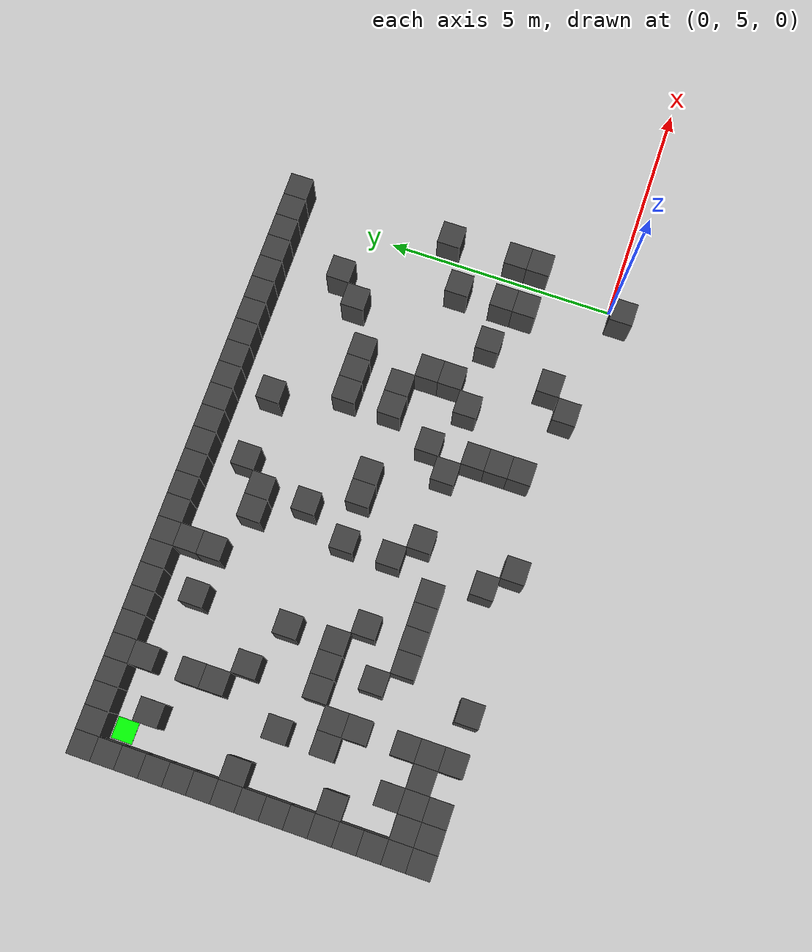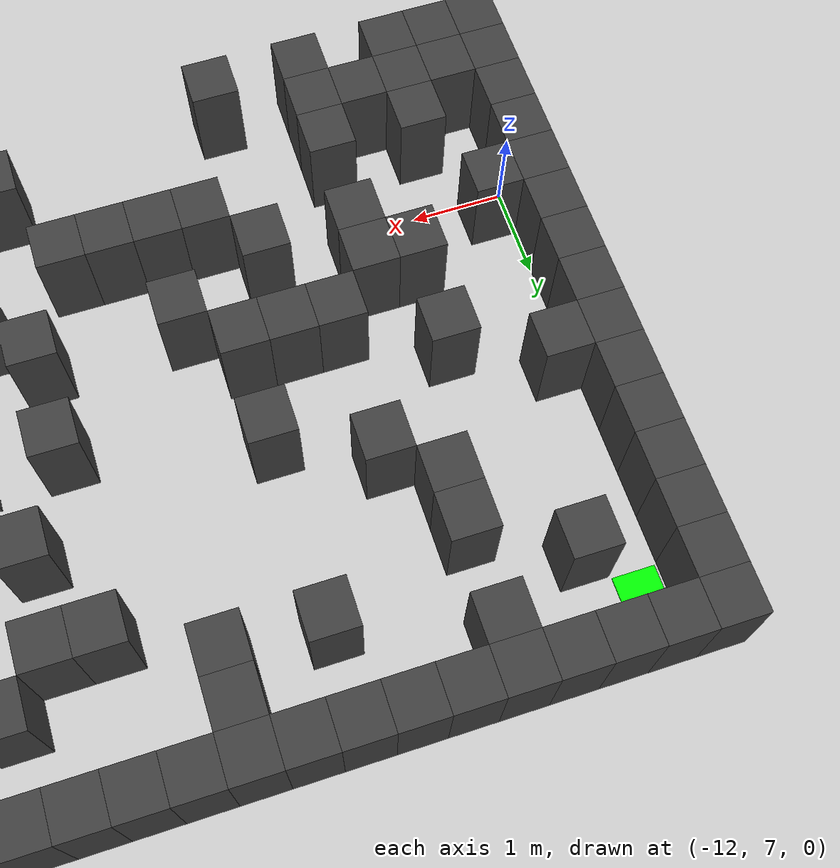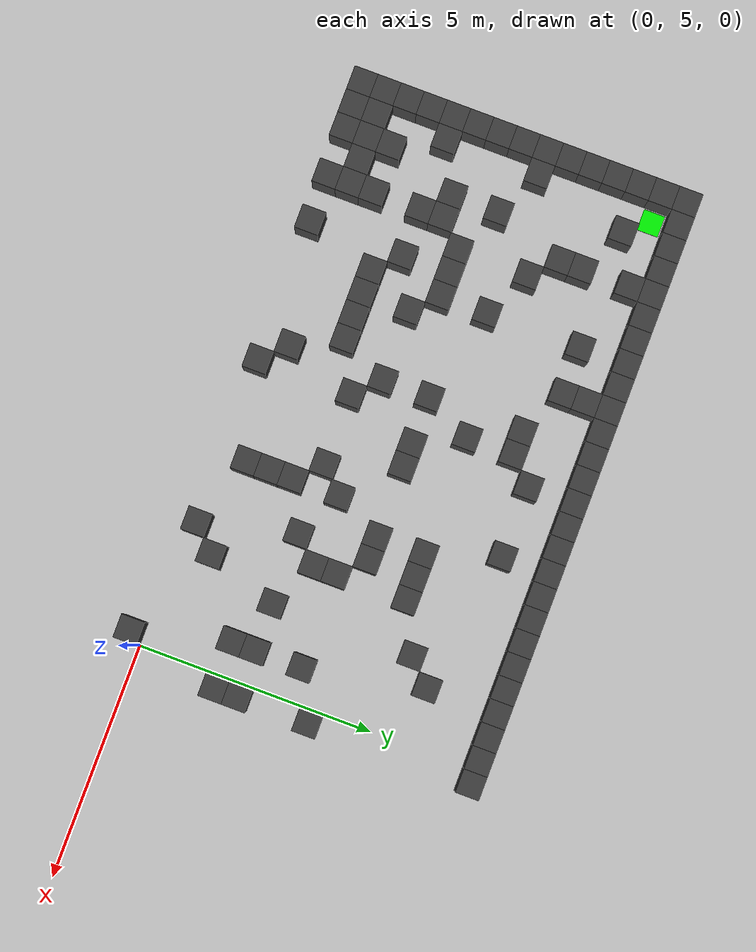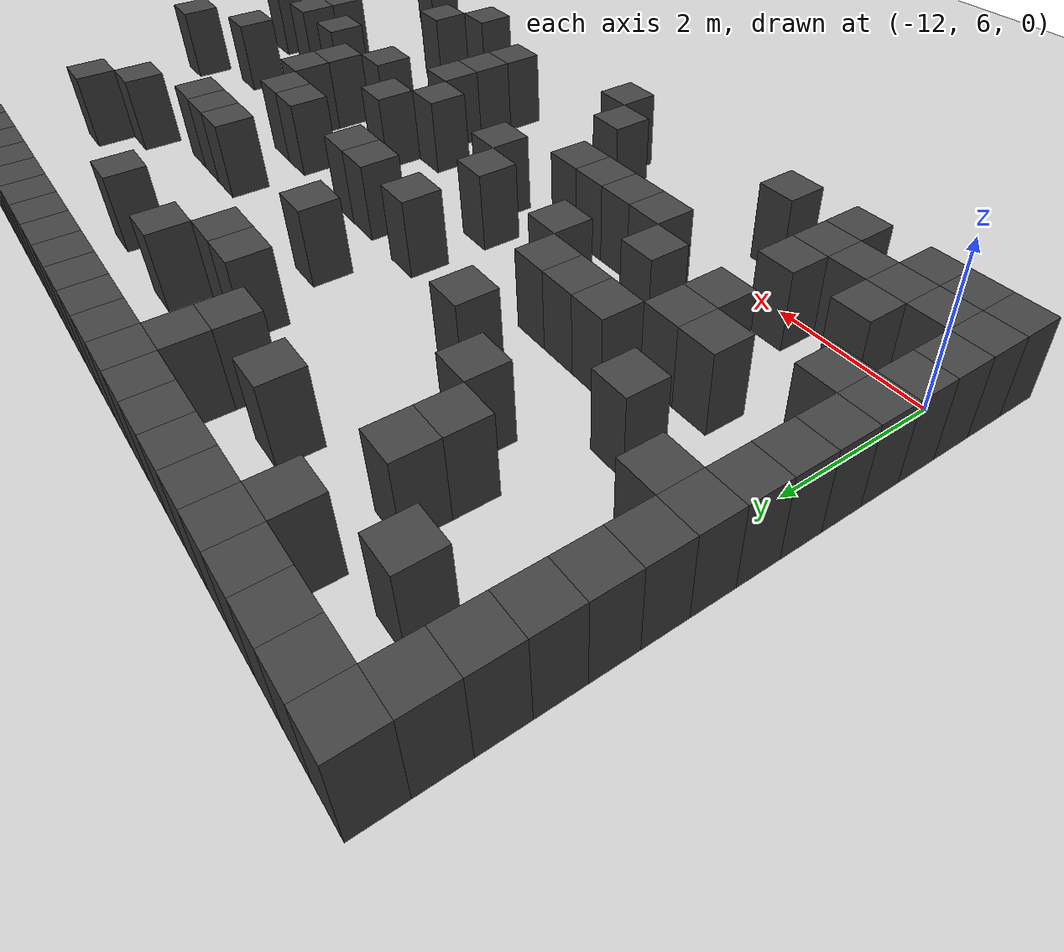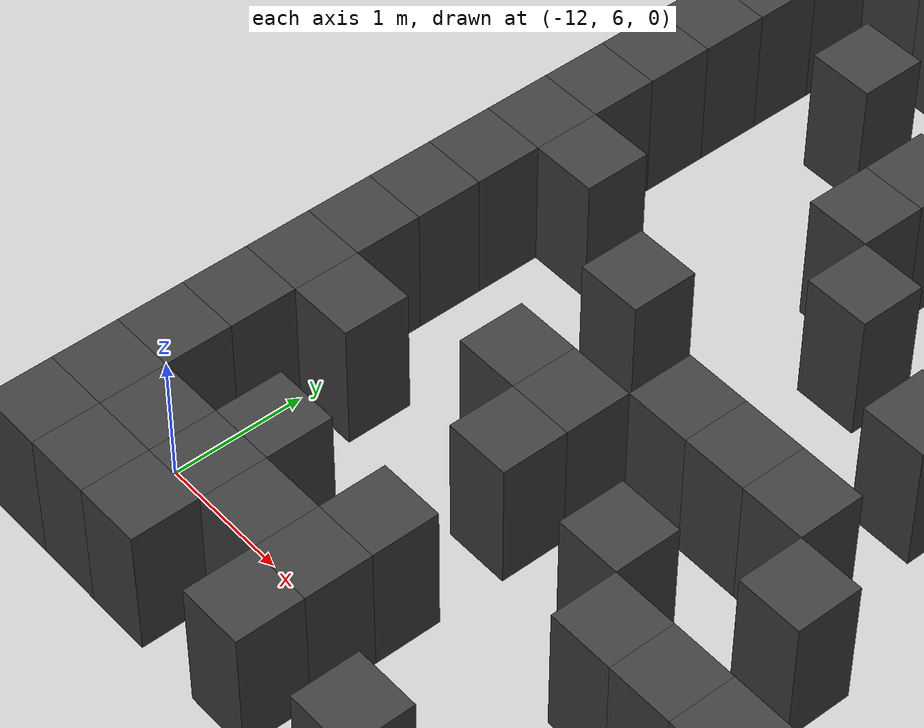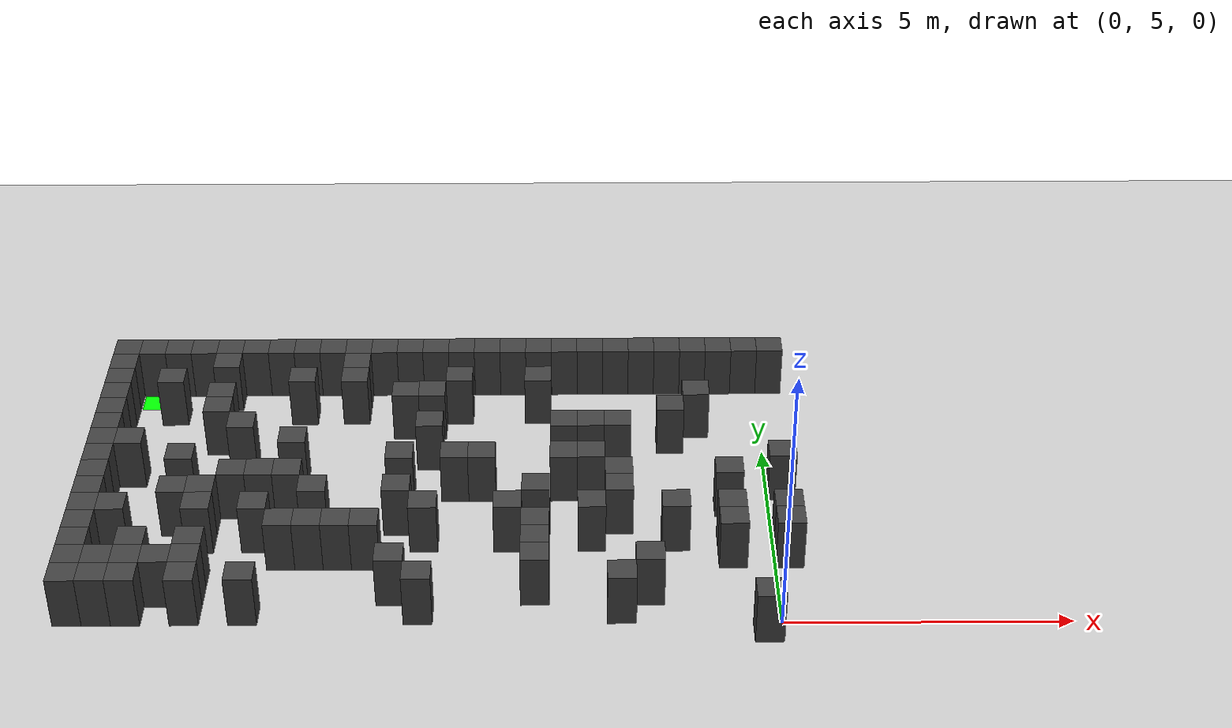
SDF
<sdf version="1.7">
 <world name="map_4226">
  <model name="ground_plane">
   <static>true</static>
   <link name="link">
    <collision name="collision">
     <geometry><plane><normal>0 0 1</normal><size>200 200</size></plane></geometry>
    </collision>
    <visual name="visual">
     <geometry><plane><normal>0 0 1</normal><size>200 200</size></plane></geometry>
     <material><ambient>0.8 0.8 0.8 1</ambient><diffuse>0.8 0.8 0.8 1</diffuse></material>
    </visual>
   </link>
  </model>
  <model name="maze_environment">
   <static>true</static>
   <link name="wall_0">
    <pose>-12.250 12.250 0.500 0 0 0</pose>
    <collision name="col"><geometry><box><size>0.5 0.5 1.0</size></box></geometry></collision>
    <visual name="vis">
     <geometry><box><size>0.5 0.5 1.0</size></box></geometry>
     <material><ambient>0.15 0.15 0.15 1</ambient><diffuse>0.25 0.25 0.25 1</diffuse></material>
    </visual>
   </link>
   <link name="wall_1">
    <pose>-11.750 12.250 0.500 0 0 0</pose>
    <collision name="col"><geometry><box><size>0.5 0.5 1.0</size></box></geometry></collision>
    <visual name="vis">
     <geometry><box><size>0.5 0.5 1.0</size></box></geometry>
     <material><ambient>0.15 0.15 0.15 1</ambient><diffuse>0.25 0.25 0.25 1</diffuse></material>
    </visual>
   </link>
   <link name="wall_2">
    <pose>-11.250 12.250 0.500 0 0 0</pose>
    <collision name="col"><geometry><box><size>0.5 0.5 1.0</size></box></geometry></collision>
    <visual name="vis">
     <geometry><box><size>0.5 0.5 1.0</size></box></geometry>
     <material><ambient>0.15 0.15 0.15 1</ambient><diffuse>0.25 0.25 0.25 1</diffuse></material>
    </visual>
   </link>
   <link name="wall_3">
    <pose>-10.750 12.250 0.500 0 0 0</pose>
    <collision name="col"><geometry><box><size>0.5 0.5 1.0</size></box></geometry></collision>
    <visual name="vis">
     <geometry><box><size>0.5 0.5 1.0</size></box></geometry>
     <material><ambient>0.15 0.15 0.15 1</ambient><diffuse>0.25 0.25 0.25 1</diffuse></material>
    </visual>
   </link>
   <link name="wall_4">
    <pose>-10.250 12.250 0.500 0 0 0</pose>
    <collision name="col"><geometry><box><size>0.5 0.5 1.0</size></box></geometry></collision>
    <visual name="vis">
     <geometry><box><size>0.5 0.5 1.0</size></box></geometry>
     <material><ambient>0.15 0.15 0.15 1</ambient><diffuse>0.25 0.25 0.25 1</diffuse></material>
    </visual>
   </link>
   <link name="wall_5">
    <pose>-9.750 12.250 0.500 0 0 0</pose>
    <collision name="col"><geometry><box><size>0.5 0.5 1.0</size></box></geometry></collision>
    <visual name="vis">
     <geometry><box><size>0.5 0.5 1.0</size></box></geometry>
     <material><ambient>0.15 0.15 0.15 1</ambient><diffuse>0.25 0.25 0.25 1</diffuse></material>
    </visual>
   </link>
   <link name="wall_6">
    <pose>-9.250 12.250 0.500 0 0 0</pose>
    <collision name="col"><geometry><box><size>0.5 0.5 1.0</size></box></geometry></collision>
    <visual name="vis">
     <geometry><box><size>0.5 0.5 1.0</size></box></geometry>
     <material><ambient>0.15 0.15 0.15 1</ambient><diffuse>0.25 0.25 0.25 1</diffuse></material>
    </visual>
   </link>
   <link name="wall_7">
    <pose>-8.750 12.250 0.500 0 0 0</pose>
    <collision name="col"><geometry><box><size>0.5 0.5 1.0</size></box></geometry></collision>
    <visual name="vis">
     <geometry><box><size>0.5 0.5 1.0</size></box></geometry>
     <material><ambient>0.15 0.15 0.15 1</ambient><diffuse>0.25 0.25 0.25 1</diffuse></material>
    </visual>
   </link>
   <link name="wall_8">
    <pose>-8.250 12.250 0.500 0 0 0</pose>
    <collision name="col"><geometry><box><size>0.5 0.5 1.0</size></box></geometry></collision>
    <visual name="vis">
     <geometry><box><size>0.5 0.5 1.0</size></box></geometry>
     <material><ambient>0.15 0.15 0.15 1</ambient><diffuse>0.25 0.25 0.25 1</diffuse></material>
    </visual>
   </link>
   <link name="wall_9">
    <pose>-7.750 12.250 0.500 0 0 0</pose>
    <collision name="col"><geometry><box><size>0.5 0.5 1.0</size></box></geometry></collision>
    <visual name="vis">
     <geometry><box><size>0.5 0.5 1.0</size></box></geometry>
     <material><ambient>0.15 0.15 0.15 1</ambient><diffuse>0.25 0.25 0.25 1</diffuse></material>
    </visual>
   </link>
   <link name="wall_10">
    <pose>-7.250 12.250 0.500 0 0 0</pose>
    <collision name="col"><geometry><box><size>0.5 0.5 1.0</size></box></geometry></collision>
    <visual name="vis">
     <geometry><box><size>0.5 0.5 1.0</size></box></geometry>
     <material><ambient>0.15 0.15 0.15 1</ambient><diffuse>0.25 0.25 0.25 1</diffuse></material>
    </visual>
   </link>
   <link name="wall_11">
    <pose>-6.750 12.250 0.500 0 0 0</pose>
    <collision name="col"><geometry><box><size>0.5 0.5 1.0</size></box></geometry></collision>
    <visual name="vis">
     <geometry><box><size>0.5 0.5 1.0</size></box></geometry>
     <material><ambient>0.15 0.15 0.15 1</ambient><diffuse>0.25 0.25 0.25 1</diffuse></material>
    </visual>
   </link>
   <link name="wall_12">
    <pose>-6.250 12.250 0.500 0 0 0</pose>
    <collision name="col"><geometry><box><size>0.5 0.5 1.0</size></box></geometry></collision>
    <visual name="vis">
     <geometry><box><size>0.5 0.5 1.0</size></box></geometry>
     <material><ambient>0.15 0.15 0.15 1</ambient><diffuse>0.25 0.25 0.25 1</diffuse></material>
    </visual>
   </link>
   <link name="wall_13">
    <pose>-5.750 12.250 0.500 0 0 0</pose>
    <collision name="col"><geometry><box><size>0.5 0.5 1.0</size></box></geometry></collision>
    <visual name="vis">
     <geometry><box><size>0.5 0.5 1.0</size></box></geometry>
     <material><ambient>0.15 0.15 0.15 1</ambient><diffuse>0.25 0.25 0.25 1</diffuse></material>
    </visual>
   </link>
   <link name="wall_14">
    <pose>-5.250 12.250 0.500 0 0 0</pose>
    <collision name="col"><geometry><box><size>0.5 0.5 1.0</size></box></geometry></collision>
    <visual name="vis">
     <geometry><box><size>0.5 0.5 1.0</size></box></geometry>
     <material><ambient>0.15 0.15 0.15 1</ambient><diffuse>0.25 0.25 0.25 1</diffuse></material>
    </visual>
   </link>
   <link name="wall_15">
    <pose>-4.750 12.250 0.500 0 0 0</pose>
    <collision name="col"><geometry><box><size>0.5 0.5 1.0</size></box></geometry></collision>
    <visual name="vis">
     <geometry><box><size>0.5 0.5 1.0</size></box></geometry>
     <material><ambient>0.15 0.15 0.15 1</ambient><diffuse>0.25 0.25 0.25 1</diffuse></material>
    </visual>
   </link>
   <link name="wall_16">
    <pose>-4.250 12.250 0.500 0 0 0</pose>
    <collision name="col"><geometry><box><size>0.5 0.5 1.0</size></box></geometry></collision>
    <visual name="vis">
     <geometry><box><size>0.5 0.5 1.0</size></box></geometry>
     <material><ambient>0.15 0.15 0.15 1</ambient><diffuse>0.25 0.25 0.25 1</diffuse></material>
    </visual>
   </link>
   <link name="wall_17">
    <pose>-3.750 12.250 0.500 0 0 0</pose>
    <collision name="col"><geometry><box><size>0.5 0.5 1.0</size></box></geometry></collision>
    <visual name="vis">
     <geometry><box><size>0.5 0.5 1.0</size></box></geometry>
     <material><ambient>0.15 0.15 0.15 1</ambient><diffuse>0.25 0.25 0.25 1</diffuse></material>
    </visual>
   </link>
   <link name="wall_18">
    <pose>-3.250 12.250 0.500 0 0 0</pose>
    <collision name="col"><geometry><box><size>0.5 0.5 1.0</size></box></geometry></collision>
    <visual name="vis">
     <geometry><box><size>0.5 0.5 1.0</size></box></geometry>
     <material><ambient>0.15 0.15 0.15 1</ambient><diffuse>0.25 0.25 0.25 1</diffuse></material>
    </visual>
   </link>
   <link name="wall_19">
    <pose>-2.750 12.250 0.500 0 0 0</pose>
    <collision name="col"><geometry><box><size>0.5 0.5 1.0</size></box></geometry></collision>
    <visual name="vis">
     <geometry><box><size>0.5 0.5 1.0</size></box></geometry>
     <material><ambient>0.15 0.15 0.15 1</ambient><diffuse>0.25 0.25 0.25 1</diffuse></material>
    </visual>
   </link>
   <link name="wall_20">
    <pose>-2.250 12.250 0.500 0 0 0</pose>
    <collision name="col"><geometry><box><size>0.5 0.5 1.0</size></box></geometry></collision>
    <visual name="vis">
     <geometry><box><size>0.5 0.5 1.0</size></box></geometry>
     <material><ambient>0.15 0.15 0.15 1</ambient><diffuse>0.25 0.25 0.25 1</diffuse></material>
    </visual>
   </link>
   <link name="wall_21">
    <pose>-1.750 12.250 0.500 0 0 0</pose>
    <collision name="col"><geometry><box><size>0.5 0.5 1.0</size></box></geometry></collision>
    <visual name="vis">
     <geometry><box><size>0.5 0.5 1.0</size></box></geometry>
     <material><ambient>0.15 0.15 0.15 1</ambient><diffuse>0.25 0.25 0.25 1</diffuse></material>
    </visual>
   </link>
   <link name="wall_22">
    <pose>-1.250 12.250 0.500 0 0 0</pose>
    <collision name="col"><geometry><box><size>0.5 0.5 1.0</size></box></geometry></collision>
    <visual name="vis">
     <geometry><box><size>0.5 0.5 1.0</size></box></geometry>
     <material><ambient>0.15 0.15 0.15 1</ambient><diffuse>0.25 0.25 0.25 1</diffuse></material>
    </visual>
   </link>
   <link name="wall_23">
    <pose>-0.750 12.250 0.500 0 0 0</pose>
    <collision name="col"><geometry><box><size>0.5 0.5 1.0</size></box></geometry></collision>
    <visual name="vis">
     <geometry><box><size>0.5 0.5 1.0</size></box></geometry>
     <material><ambient>0.15 0.15 0.15 1</ambient><diffuse>0.25 0.25 0.25 1</diffuse></material>
    </visual>
   </link>
   <link name="wall_24">
    <pose>-0.250 12.250 0.500 0 0 0</pose>
    <collision name="col"><geometry><box><size>0.5 0.5 1.0</size></box></geometry></collision>
    <visual name="vis">
     <geometry><box><size>0.5 0.5 1.0</size></box></geometry>
     <material><ambient>0.15 0.15 0.15 1</ambient><diffuse>0.25 0.25 0.25 1</diffuse></material>
    </visual>
   </link>
   <link name="wall_25">
    <pose>0.250 12.250 0.500 0 0 0</pose>
    <collision name="col"><geometry><box><size>0.5 0.5 1.0</size></box></geometry></collision>
    <visual name="vis">
     <geometry><box><size>0.5 0.5 1.0</size></box></geometry>
     <material><ambient>0.15 0.15 0.15 1</ambient><diffuse>0.25 0.25 0.25 1</diffuse></material>
    </visual>
   </link>
   <link name="wall_50">
    <pose>-12.250 11.750 0.500 0 0 0</pose>
    <collision name="col"><geometry><box><size>0.5 0.5 1.0</size></box></geometry></collision>
    <visual name="vis">
     <geometry><box><size>0.5 0.5 1.0</size></box></geometry>
     <material><ambient>0.15 0.15 0.15 1</ambient><diffuse>0.25 0.25 0.25 1</diffuse></material>
    </visual>
   </link>
   <link name="wall_51">
    <pose>-10.250 11.750 0.500 0 0 0</pose>
    <collision name="col"><geometry><box><size>0.5 0.5 1.0</size></box></geometry></collision>
    <visual name="vis">
     <geometry><box><size>0.5 0.5 1.0</size></box></geometry>
     <material><ambient>0.15 0.15 0.15 1</ambient><diffuse>0.25 0.25 0.25 1</diffuse></material>
    </visual>
   </link>
   <link name="wall_52">
    <pose>-7.750 11.750 0.500 0 0 0</pose>
    <collision name="col"><geometry><box><size>0.5 0.5 1.0</size></box></geometry></collision>
    <visual name="vis">
     <geometry><box><size>0.5 0.5 1.0</size></box></geometry>
     <material><ambient>0.15 0.15 0.15 1</ambient><diffuse>0.25 0.25 0.25 1</diffuse></material>
    </visual>
   </link>
   <link name="wall_58">
    <pose>-12.250 11.250 0.500 0 0 0</pose>
    <collision name="col"><geometry><box><size>0.5 0.5 1.0</size></box></geometry></collision>
    <visual name="vis">
     <geometry><box><size>0.5 0.5 1.0</size></box></geometry>
     <material><ambient>0.15 0.15 0.15 1</ambient><diffuse>0.25 0.25 0.25 1</diffuse></material>
    </visual>
   </link>
   <link name="wall_59">
    <pose>-11.250 11.250 0.500 0 0 0</pose>
    <collision name="col"><geometry><box><size>0.5 0.5 1.0</size></box></geometry></collision>
    <visual name="vis">
     <geometry><box><size>0.5 0.5 1.0</size></box></geometry>
     <material><ambient>0.15 0.15 0.15 1</ambient><diffuse>0.25 0.25 0.25 1</diffuse></material>
    </visual>
   </link>
   <link name="wall_60">
    <pose>-8.750 11.250 0.500 0 0 0</pose>
    <collision name="col"><geometry><box><size>0.5 0.5 1.0</size></box></geometry></collision>
    <visual name="vis">
     <geometry><box><size>0.5 0.5 1.0</size></box></geometry>
     <material><ambient>0.15 0.15 0.15 1</ambient><diffuse>0.25 0.25 0.25 1</diffuse></material>
    </visual>
   </link>
   <link name="wall_61">
    <pose>-7.750 11.250 0.500 0 0 0</pose>
    <collision name="col"><geometry><box><size>0.5 0.5 1.0</size></box></geometry></collision>
    <visual name="vis">
     <geometry><box><size>0.5 0.5 1.0</size></box></geometry>
     <material><ambient>0.15 0.15 0.15 1</ambient><diffuse>0.25 0.25 0.25 1</diffuse></material>
    </visual>
   </link>
   <link name="wall_62">
    <pose>-5.750 11.250 0.500 0 0 0</pose>
    <collision name="col"><geometry><box><size>0.5 0.5 1.0</size></box></geometry></collision>
    <visual name="vis">
     <geometry><box><size>0.5 0.5 1.0</size></box></geometry>
     <material><ambient>0.15 0.15 0.15 1</ambient><diffuse>0.25 0.25 0.25 1</diffuse></material>
    </visual>
   </link>
   <link name="wall_63">
    <pose>-4.250 11.250 0.500 0 0 0</pose>
    <collision name="col"><geometry><box><size>0.5 0.5 1.0</size></box></geometry></collision>
    <visual name="vis">
     <geometry><box><size>0.5 0.5 1.0</size></box></geometry>
     <material><ambient>0.15 0.15 0.15 1</ambient><diffuse>0.25 0.25 0.25 1</diffuse></material>
    </visual>
   </link>
   <link name="wall_73">
    <pose>-12.250 10.750 0.500 0 0 0</pose>
    <collision name="col"><geometry><box><size>0.5 0.5 1.0</size></box></geometry></collision>
    <visual name="vis">
     <geometry><box><size>0.5 0.5 1.0</size></box></geometry>
     <material><ambient>0.15 0.15 0.15 1</ambient><diffuse>0.25 0.25 0.25 1</diffuse></material>
    </visual>
   </link>
   <link name="wall_74">
    <pose>-10.250 10.750 0.500 0 0 0</pose>
    <collision name="col"><geometry><box><size>0.5 0.5 1.0</size></box></geometry></collision>
    <visual name="vis">
     <geometry><box><size>0.5 0.5 1.0</size></box></geometry>
     <material><ambient>0.15 0.15 0.15 1</ambient><diffuse>0.25 0.25 0.25 1</diffuse></material>
    </visual>
   </link>
   <link name="wall_75">
    <pose>-6.750 10.750 0.500 0 0 0</pose>
    <collision name="col"><geometry><box><size>0.5 0.5 1.0</size></box></geometry></collision>
    <visual name="vis">
     <geometry><box><size>0.5 0.5 1.0</size></box></geometry>
     <material><ambient>0.15 0.15 0.15 1</ambient><diffuse>0.25 0.25 0.25 1</diffuse></material>
    </visual>
   </link>
   <link name="wall_76">
    <pose>-6.250 10.750 0.500 0 0 0</pose>
    <collision name="col"><geometry><box><size>0.5 0.5 1.0</size></box></geometry></collision>
    <visual name="vis">
     <geometry><box><size>0.5 0.5 1.0</size></box></geometry>
     <material><ambient>0.15 0.15 0.15 1</ambient><diffuse>0.25 0.25 0.25 1</diffuse></material>
    </visual>
   </link>
   <link name="wall_77">
    <pose>-1.250 10.750 0.500 0 0 0</pose>
    <collision name="col"><geometry><box><size>0.5 0.5 1.0</size></box></geometry></collision>
    <visual name="vis">
     <geometry><box><size>0.5 0.5 1.0</size></box></geometry>
     <material><ambient>0.15 0.15 0.15 1</ambient><diffuse>0.25 0.25 0.25 1</diffuse></material>
    </visual>
   </link>
   <link name="wall_84">
    <pose>-12.250 10.250 0.500 0 0 0</pose>
    <collision name="col"><geometry><box><size>0.5 0.5 1.0</size></box></geometry></collision>
    <visual name="vis">
     <geometry><box><size>0.5 0.5 1.0</size></box></geometry>
     <material><ambient>0.15 0.15 0.15 1</ambient><diffuse>0.25 0.25 0.25 1</diffuse></material>
    </visual>
   </link>
   <link name="wall_85">
    <pose>-10.250 10.250 0.500 0 0 0</pose>
    <collision name="col"><geometry><box><size>0.5 0.5 1.0</size></box></geometry></collision>
    <visual name="vis">
     <geometry><box><size>0.5 0.5 1.0</size></box></geometry>
     <material><ambient>0.15 0.15 0.15 1</ambient><diffuse>0.25 0.25 0.25 1</diffuse></material>
    </visual>
   </link>
   <link name="wall_86">
    <pose>-1.750 10.250 0.500 0 0 0</pose>
    <collision name="col"><geometry><box><size>0.5 0.5 1.0</size></box></geometry></collision>
    <visual name="vis">
     <geometry><box><size>0.5 0.5 1.0</size></box></geometry>
     <material><ambient>0.15 0.15 0.15 1</ambient><diffuse>0.25 0.25 0.25 1</diffuse></material>
    </visual>
   </link>
   <link name="wall_93">
    <pose>-12.250 9.750 0.500 0 0 0</pose>
    <collision name="col"><geometry><box><size>0.5 0.5 1.0</size></box></geometry></collision>
    <visual name="vis">
     <geometry><box><size>0.5 0.5 1.0</size></box></geometry>
     <material><ambient>0.15 0.15 0.15 1</ambient><diffuse>0.25 0.25 0.25 1</diffuse></material>
    </visual>
   </link>
   <link name="wall_94">
    <pose>-9.750 9.750 0.500 0 0 0</pose>
    <collision name="col"><geometry><box><size>0.5 0.5 1.0</size></box></geometry></collision>
    <visual name="vis">
     <geometry><box><size>0.5 0.5 1.0</size></box></geometry>
     <material><ambient>0.15 0.15 0.15 1</ambient><diffuse>0.25 0.25 0.25 1</diffuse></material>
    </visual>
   </link>
   <link name="wall_95">
    <pose>-6.250 9.750 0.500 0 0 0</pose>
    <collision name="col"><geometry><box><size>0.5 0.5 1.0</size></box></geometry></collision>
    <visual name="vis">
     <geometry><box><size>0.5 0.5 1.0</size></box></geometry>
     <material><ambient>0.15 0.15 0.15 1</ambient><diffuse>0.25 0.25 0.25 1</diffuse></material>
    </visual>
   </link>
   <link name="wall_96">
    <pose>-3.750 9.750 0.500 0 0 0</pose>
    <collision name="col"><geometry><box><size>0.5 0.5 1.0</size></box></geometry></collision>
    <visual name="vis">
     <geometry><box><size>0.5 0.5 1.0</size></box></geometry>
     <material><ambient>0.15 0.15 0.15 1</ambient><diffuse>0.25 0.25 0.25 1</diffuse></material>
    </visual>
   </link>
   <link name="wall_97">
    <pose>-3.250 9.750 0.500 0 0 0</pose>
    <collision name="col"><geometry><box><size>0.5 0.5 1.0</size></box></geometry></collision>
    <visual name="vis">
     <geometry><box><size>0.5 0.5 1.0</size></box></geometry>
     <material><ambient>0.15 0.15 0.15 1</ambient><diffuse>0.25 0.25 0.25 1</diffuse></material>
    </visual>
   </link>
   <link name="wall_98">
    <pose>-2.750 9.750 0.500 0 0 0</pose>
    <collision name="col"><geometry><box><size>0.5 0.5 1.0</size></box></geometry></collision>
    <visual name="vis">
     <geometry><box><size>0.5 0.5 1.0</size></box></geometry>
     <material><ambient>0.15 0.15 0.15 1</ambient><diffuse>0.25 0.25 0.25 1</diffuse></material>
    </visual>
   </link>
   <link name="wall_105">
    <pose>-12.250 9.250 0.500 0 0 0</pose>
    <collision name="col"><geometry><box><size>0.5 0.5 1.0</size></box></geometry></collision>
    <visual name="vis">
     <geometry><box><size>0.5 0.5 1.0</size></box></geometry>
     <material><ambient>0.15 0.15 0.15 1</ambient><diffuse>0.25 0.25 0.25 1</diffuse></material>
    </visual>
   </link>
   <link name="wall_106">
    <pose>-11.750 9.250 0.500 0 0 0</pose>
    <collision name="col"><geometry><box><size>0.5 0.5 1.0</size></box></geometry></collision>
    <visual name="vis">
     <geometry><box><size>0.5 0.5 1.0</size></box></geometry>
     <material><ambient>0.15 0.15 0.15 1</ambient><diffuse>0.25 0.25 0.25 1</diffuse></material>
    </visual>
   </link>
   <link name="wall_107">
    <pose>-8.750 9.250 0.500 0 0 0</pose>
    <collision name="col"><geometry><box><size>0.5 0.5 1.0</size></box></geometry></collision>
    <visual name="vis">
     <geometry><box><size>0.5 0.5 1.0</size></box></geometry>
     <material><ambient>0.15 0.15 0.15 1</ambient><diffuse>0.25 0.25 0.25 1</diffuse></material>
    </visual>
   </link>
   <link name="wall_114">
    <pose>-12.250 8.750 0.500 0 0 0</pose>
    <collision name="col"><geometry><box><size>0.5 0.5 1.0</size></box></geometry></collision>
    <visual name="vis">
     <geometry><box><size>0.5 0.5 1.0</size></box></geometry>
     <material><ambient>0.15 0.15 0.15 1</ambient><diffuse>0.25 0.25 0.25 1</diffuse></material>
    </visual>
   </link>
   <link name="wall_115">
    <pose>-10.750 8.750 0.500 0 0 0</pose>
    <collision name="col"><geometry><box><size>0.5 0.5 1.0</size></box></geometry></collision>
    <visual name="vis">
     <geometry><box><size>0.5 0.5 1.0</size></box></geometry>
     <material><ambient>0.15 0.15 0.15 1</ambient><diffuse>0.25 0.25 0.25 1</diffuse></material>
    </visual>
   </link>
   <link name="wall_116">
    <pose>-6.750 8.750 0.500 0 0 0</pose>
    <collision name="col"><geometry><box><size>0.5 0.5 1.0</size></box></geometry></collision>
    <visual name="vis">
     <geometry><box><size>0.5 0.5 1.0</size></box></geometry>
     <material><ambient>0.15 0.15 0.15 1</ambient><diffuse>0.25 0.25 0.25 1</diffuse></material>
    </visual>
   </link>
   <link name="wall_117">
    <pose>-5.750 8.750 0.500 0 0 0</pose>
    <collision name="col"><geometry><box><size>0.5 0.5 1.0</size></box></geometry></collision>
    <visual name="vis">
     <geometry><box><size>0.5 0.5 1.0</size></box></geometry>
     <material><ambient>0.15 0.15 0.15 1</ambient><diffuse>0.25 0.25 0.25 1</diffuse></material>
    </visual>
   </link>
   <link name="wall_118">
    <pose>-5.250 8.750 0.500 0 0 0</pose>
    <collision name="col"><geometry><box><size>0.5 0.5 1.0</size></box></geometry></collision>
    <visual name="vis">
     <geometry><box><size>0.5 0.5 1.0</size></box></geometry>
     <material><ambient>0.15 0.15 0.15 1</ambient><diffuse>0.25 0.25 0.25 1</diffuse></material>
    </visual>
   </link>
   <link name="wall_119">
    <pose>-3.750 8.750 0.500 0 0 0</pose>
    <collision name="col"><geometry><box><size>0.5 0.5 1.0</size></box></geometry></collision>
    <visual name="vis">
     <geometry><box><size>0.5 0.5 1.0</size></box></geometry>
     <material><ambient>0.15 0.15 0.15 1</ambient><diffuse>0.25 0.25 0.25 1</diffuse></material>
    </visual>
   </link>
   <link name="wall_120">
    <pose>-3.250 8.750 0.500 0 0 0</pose>
    <collision name="col"><geometry><box><size>0.5 0.5 1.0</size></box></geometry></collision>
    <visual name="vis">
     <geometry><box><size>0.5 0.5 1.0</size></box></geometry>
     <material><ambient>0.15 0.15 0.15 1</ambient><diffuse>0.25 0.25 0.25 1</diffuse></material>
    </visual>
   </link>
   <link name="wall_121">
    <pose>0.250 8.750 0.500 0 0 0</pose>
    <collision name="col"><geometry><box><size>0.5 0.5 1.0</size></box></geometry></collision>
    <visual name="vis">
     <geometry><box><size>0.5 0.5 1.0</size></box></geometry>
     <material><ambient>0.15 0.15 0.15 1</ambient><diffuse>0.25 0.25 0.25 1</diffuse></material>
    </visual>
   </link>
   <link name="wall_126">
    <pose>-12.250 8.250 0.500 0 0 0</pose>
    <collision name="col"><geometry><box><size>0.5 0.5 1.0</size></box></geometry></collision>
    <visual name="vis">
     <geometry><box><size>0.5 0.5 1.0</size></box></geometry>
     <material><ambient>0.15 0.15 0.15 1</ambient><diffuse>0.25 0.25 0.25 1</diffuse></material>
    </visual>
   </link>
   <link name="wall_127">
    <pose>-9.750 8.250 0.500 0 0 0</pose>
    <collision name="col"><geometry><box><size>0.5 0.5 1.0</size></box></geometry></collision>
    <visual name="vis">
     <geometry><box><size>0.5 0.5 1.0</size></box></geometry>
     <material><ambient>0.15 0.15 0.15 1</ambient><diffuse>0.25 0.25 0.25 1</diffuse></material>
    </visual>
   </link>
   <link name="wall_128">
    <pose>-9.250 8.250 0.500 0 0 0</pose>
    <collision name="col"><geometry><box><size>0.5 0.5 1.0</size></box></geometry></collision>
    <visual name="vis">
     <geometry><box><size>0.5 0.5 1.0</size></box></geometry>
     <material><ambient>0.15 0.15 0.15 1</ambient><diffuse>0.25 0.25 0.25 1</diffuse></material>
    </visual>
   </link>
   <link name="wall_129">
    <pose>-8.750 8.250 0.500 0 0 0</pose>
    <collision name="col"><geometry><box><size>0.5 0.5 1.0</size></box></geometry></collision>
    <visual name="vis">
     <geometry><box><size>0.5 0.5 1.0</size></box></geometry>
     <material><ambient>0.15 0.15 0.15 1</ambient><diffuse>0.25 0.25 0.25 1</diffuse></material>
    </visual>
   </link>
   <link name="wall_130">
    <pose>-2.750 8.250 0.500 0 0 0</pose>
    <collision name="col"><geometry><box><size>0.5 0.5 1.0</size></box></geometry></collision>
    <visual name="vis">
     <geometry><box><size>0.5 0.5 1.0</size></box></geometry>
     <material><ambient>0.15 0.15 0.15 1</ambient><diffuse>0.25 0.25 0.25 1</diffuse></material>
    </visual>
   </link>
   <link name="wall_131">
    <pose>-0.750 8.250 0.500 0 0 0</pose>
    <collision name="col"><geometry><box><size>0.5 0.5 1.0</size></box></geometry></collision>
    <visual name="vis">
     <geometry><box><size>0.5 0.5 1.0</size></box></geometry>
     <material><ambient>0.15 0.15 0.15 1</ambient><diffuse>0.25 0.25 0.25 1</diffuse></material>
    </visual>
   </link>
   <link name="wall_138">
    <pose>-12.250 7.750 0.500 0 0 0</pose>
    <collision name="col"><geometry><box><size>0.5 0.5 1.0</size></box></geometry></collision>
    <visual name="vis">
     <geometry><box><size>0.5 0.5 1.0</size></box></geometry>
     <material><ambient>0.15 0.15 0.15 1</ambient><diffuse>0.25 0.25 0.25 1</diffuse></material>
    </visual>
   </link>
   <link name="wall_139">
    <pose>-10.750 7.750 0.500 0 0 0</pose>
    <collision name="col"><geometry><box><size>0.5 0.5 1.0</size></box></geometry></collision>
    <visual name="vis">
     <geometry><box><size>0.5 0.5 1.0</size></box></geometry>
     <material><ambient>0.15 0.15 0.15 1</ambient><diffuse>0.25 0.25 0.25 1</diffuse></material>
    </visual>
   </link>
   <link name="wall_140">
    <pose>-10.250 7.750 0.500 0 0 0</pose>
    <collision name="col"><geometry><box><size>0.5 0.5 1.0</size></box></geometry></collision>
    <visual name="vis">
     <geometry><box><size>0.5 0.5 1.0</size></box></geometry>
     <material><ambient>0.15 0.15 0.15 1</ambient><diffuse>0.25 0.25 0.25 1</diffuse></material>
    </visual>
   </link>
   <link name="wall_141">
    <pose>-8.250 7.750 0.500 0 0 0</pose>
    <collision name="col"><geometry><box><size>0.5 0.5 1.0</size></box></geometry></collision>
    <visual name="vis">
     <geometry><box><size>0.5 0.5 1.0</size></box></geometry>
     <material><ambient>0.15 0.15 0.15 1</ambient><diffuse>0.25 0.25 0.25 1</diffuse></material>
    </visual>
   </link>
   <link name="wall_142">
    <pose>-6.750 7.750 0.500 0 0 0</pose>
    <collision name="col"><geometry><box><size>0.5 0.5 1.0</size></box></geometry></collision>
    <visual name="vis">
     <geometry><box><size>0.5 0.5 1.0</size></box></geometry>
     <material><ambient>0.15 0.15 0.15 1</ambient><diffuse>0.25 0.25 0.25 1</diffuse></material>
    </visual>
   </link>
   <link name="wall_143">
    <pose>-4.250 7.750 0.500 0 0 0</pose>
    <collision name="col"><geometry><box><size>0.5 0.5 1.0</size></box></geometry></collision>
    <visual name="vis">
     <geometry><box><size>0.5 0.5 1.0</size></box></geometry>
     <material><ambient>0.15 0.15 0.15 1</ambient><diffuse>0.25 0.25 0.25 1</diffuse></material>
    </visual>
   </link>
   <link name="wall_144">
    <pose>-2.750 7.750 0.500 0 0 0</pose>
    <collision name="col"><geometry><box><size>0.5 0.5 1.0</size></box></geometry></collision>
    <visual name="vis">
     <geometry><box><size>0.5 0.5 1.0</size></box></geometry>
     <material><ambient>0.15 0.15 0.15 1</ambient><diffuse>0.25 0.25 0.25 1</diffuse></material>
    </visual>
   </link>
   <link name="wall_153">
    <pose>-12.250 7.250 0.500 0 0 0</pose>
    <collision name="col"><geometry><box><size>0.5 0.5 1.0</size></box></geometry></collision>
    <visual name="vis">
     <geometry><box><size>0.5 0.5 1.0</size></box></geometry>
     <material><ambient>0.15 0.15 0.15 1</ambient><diffuse>0.25 0.25 0.25 1</diffuse></material>
    </visual>
   </link>
   <link name="wall_154">
    <pose>-11.750 7.250 0.500 0 0 0</pose>
    <collision name="col"><geometry><box><size>0.5 0.5 1.0</size></box></geometry></collision>
    <visual name="vis">
     <geometry><box><size>0.5 0.5 1.0</size></box></geometry>
     <material><ambient>0.15 0.15 0.15 1</ambient><diffuse>0.25 0.25 0.25 1</diffuse></material>
    </visual>
   </link>
   <link name="wall_155">
    <pose>-10.250 7.250 0.500 0 0 0</pose>
    <collision name="col"><geometry><box><size>0.5 0.5 1.0</size></box></geometry></collision>
    <visual name="vis">
     <geometry><box><size>0.5 0.5 1.0</size></box></geometry>
     <material><ambient>0.15 0.15 0.15 1</ambient><diffuse>0.25 0.25 0.25 1</diffuse></material>
    </visual>
   </link>
   <link name="wall_156">
    <pose>-9.250 7.250 0.500 0 0 0</pose>
    <collision name="col"><geometry><box><size>0.5 0.5 1.0</size></box></geometry></collision>
    <visual name="vis">
     <geometry><box><size>0.5 0.5 1.0</size></box></geometry>
     <material><ambient>0.15 0.15 0.15 1</ambient><diffuse>0.25 0.25 0.25 1</diffuse></material>
    </visual>
   </link>
   <link name="wall_157">
    <pose>-6.250 7.250 0.500 0 0 0</pose>
    <collision name="col"><geometry><box><size>0.5 0.5 1.0</size></box></geometry></collision>
    <visual name="vis">
     <geometry><box><size>0.5 0.5 1.0</size></box></geometry>
     <material><ambient>0.15 0.15 0.15 1</ambient><diffuse>0.25 0.25 0.25 1</diffuse></material>
    </visual>
   </link>
   <link name="wall_158">
    <pose>-4.750 7.250 0.500 0 0 0</pose>
    <collision name="col"><geometry><box><size>0.5 0.5 1.0</size></box></geometry></collision>
    <visual name="vis">
     <geometry><box><size>0.5 0.5 1.0</size></box></geometry>
     <material><ambient>0.15 0.15 0.15 1</ambient><diffuse>0.25 0.25 0.25 1</diffuse></material>
    </visual>
   </link>
   <link name="wall_159">
    <pose>-3.250 7.250 0.500 0 0 0</pose>
    <collision name="col"><geometry><box><size>0.5 0.5 1.0</size></box></geometry></collision>
    <visual name="vis">
     <geometry><box><size>0.5 0.5 1.0</size></box></geometry>
     <material><ambient>0.15 0.15 0.15 1</ambient><diffuse>0.25 0.25 0.25 1</diffuse></material>
    </visual>
   </link>
   <link name="wall_160">
    <pose>-1.750 7.250 0.500 0 0 0</pose>
    <collision name="col"><geometry><box><size>0.5 0.5 1.0</size></box></geometry></collision>
    <visual name="vis">
     <geometry><box><size>0.5 0.5 1.0</size></box></geometry>
     <material><ambient>0.15 0.15 0.15 1</ambient><diffuse>0.25 0.25 0.25 1</diffuse></material>
    </visual>
   </link>
   <link name="wall_161">
    <pose>-0.750 7.250 0.500 0 0 0</pose>
    <collision name="col"><geometry><box><size>0.5 0.5 1.0</size></box></geometry></collision>
    <visual name="vis">
     <geometry><box><size>0.5 0.5 1.0</size></box></geometry>
     <material><ambient>0.15 0.15 0.15 1</ambient><diffuse>0.25 0.25 0.25 1</diffuse></material>
    </visual>
   </link>
   <link name="wall_162">
    <pose>0.250 7.250 0.500 0 0 0</pose>
    <collision name="col"><geometry><box><size>0.5 0.5 1.0</size></box></geometry></collision>
    <visual name="vis">
     <geometry><box><size>0.5 0.5 1.0</size></box></geometry>
     <material><ambient>0.15 0.15 0.15 1</ambient><diffuse>0.25 0.25 0.25 1</diffuse></material>
    </visual>
   </link>
   <link name="wall_169">
    <pose>-12.250 6.750 0.500 0 0 0</pose>
    <collision name="col"><geometry><box><size>0.5 0.5 1.0</size></box></geometry></collision>
    <visual name="vis">
     <geometry><box><size>0.5 0.5 1.0</size></box></geometry>
     <material><ambient>0.15 0.15 0.15 1</ambient><diffuse>0.25 0.25 0.25 1</diffuse></material>
    </visual>
   </link>
   <link name="wall_170">
    <pose>-8.750 6.750 0.500 0 0 0</pose>
    <collision name="col"><geometry><box><size>0.5 0.5 1.0</size></box></geometry></collision>
    <visual name="vis">
     <geometry><box><size>0.5 0.5 1.0</size></box></geometry>
     <material><ambient>0.15 0.15 0.15 1</ambient><diffuse>0.25 0.25 0.25 1</diffuse></material>
    </visual>
   </link>
   <link name="wall_171">
    <pose>-8.250 6.750 0.500 0 0 0</pose>
    <collision name="col"><geometry><box><size>0.5 0.5 1.0</size></box></geometry></collision>
    <visual name="vis">
     <geometry><box><size>0.5 0.5 1.0</size></box></geometry>
     <material><ambient>0.15 0.15 0.15 1</ambient><diffuse>0.25 0.25 0.25 1</diffuse></material>
    </visual>
   </link>
   <link name="wall_172">
    <pose>-7.750 6.750 0.500 0 0 0</pose>
    <collision name="col"><geometry><box><size>0.5 0.5 1.0</size></box></geometry></collision>
    <visual name="vis">
     <geometry><box><size>0.5 0.5 1.0</size></box></geometry>
     <material><ambient>0.15 0.15 0.15 1</ambient><diffuse>0.25 0.25 0.25 1</diffuse></material>
    </visual>
   </link>
   <link name="wall_173">
    <pose>-7.250 6.750 0.500 0 0 0</pose>
    <collision name="col"><geometry><box><size>0.5 0.5 1.0</size></box></geometry></collision>
    <visual name="vis">
     <geometry><box><size>0.5 0.5 1.0</size></box></geometry>
     <material><ambient>0.15 0.15 0.15 1</ambient><diffuse>0.25 0.25 0.25 1</diffuse></material>
    </visual>
   </link>
   <link name="wall_174">
    <pose>-4.250 6.750 0.500 0 0 0</pose>
    <collision name="col"><geometry><box><size>0.5 0.5 1.0</size></box></geometry></collision>
    <visual name="vis">
     <geometry><box><size>0.5 0.5 1.0</size></box></geometry>
     <material><ambient>0.15 0.15 0.15 1</ambient><diffuse>0.25 0.25 0.25 1</diffuse></material>
    </visual>
   </link>
   <link name="wall_175">
    <pose>-0.750 6.750 0.500 0 0 0</pose>
    <collision name="col"><geometry><box><size>0.5 0.5 1.0</size></box></geometry></collision>
    <visual name="vis">
     <geometry><box><size>0.5 0.5 1.0</size></box></geometry>
     <material><ambient>0.15 0.15 0.15 1</ambient><diffuse>0.25 0.25 0.25 1</diffuse></material>
    </visual>
   </link>
   <link name="wall_176">
    <pose>0.250 6.750 0.500 0 0 0</pose>
    <collision name="col"><geometry><box><size>0.5 0.5 1.0</size></box></geometry></collision>
    <visual name="vis">
     <geometry><box><size>0.5 0.5 1.0</size></box></geometry>
     <material><ambient>0.15 0.15 0.15 1</ambient><diffuse>0.25 0.25 0.25 1</diffuse></material>
    </visual>
   </link>
   <link name="wall_181">
    <pose>-12.250 6.250 0.500 0 0 0</pose>
    <collision name="col"><geometry><box><size>0.5 0.5 1.0</size></box></geometry></collision>
    <visual name="vis">
     <geometry><box><size>0.5 0.5 1.0</size></box></geometry>
     <material><ambient>0.15 0.15 0.15 1</ambient><diffuse>0.25 0.25 0.25 1</diffuse></material>
    </visual>
   </link>
   <link name="wall_182">
    <pose>-11.250 6.250 0.500 0 0 0</pose>
    <collision name="col"><geometry><box><size>0.5 0.5 1.0</size></box></geometry></collision>
    <visual name="vis">
     <geometry><box><size>0.5 0.5 1.0</size></box></geometry>
     <material><ambient>0.15 0.15 0.15 1</ambient><diffuse>0.25 0.25 0.25 1</diffuse></material>
    </visual>
   </link>
   <link name="wall_183">
    <pose>-10.250 6.250 0.500 0 0 0</pose>
    <collision name="col"><geometry><box><size>0.5 0.5 1.0</size></box></geometry></collision>
    <visual name="vis">
     <geometry><box><size>0.5 0.5 1.0</size></box></geometry>
     <material><ambient>0.15 0.15 0.15 1</ambient><diffuse>0.25 0.25 0.25 1</diffuse></material>
    </visual>
   </link>
   <link name="wall_184">
    <pose>-4.250 6.250 0.500 0 0 0</pose>
    <collision name="col"><geometry><box><size>0.5 0.5 1.0</size></box></geometry></collision>
    <visual name="vis">
     <geometry><box><size>0.5 0.5 1.0</size></box></geometry>
     <material><ambient>0.15 0.15 0.15 1</ambient><diffuse>0.25 0.25 0.25 1</diffuse></material>
    </visual>
   </link>
   <link name="wall_190">
    <pose>-12.250 5.750 0.500 0 0 0</pose>
    <collision name="col"><geometry><box><size>0.5 0.5 1.0</size></box></geometry></collision>
    <visual name="vis">
     <geometry><box><size>0.5 0.5 1.0</size></box></geometry>
     <material><ambient>0.15 0.15 0.15 1</ambient><diffuse>0.25 0.25 0.25 1</diffuse></material>
    </visual>
   </link>
   <link name="wall_191">
    <pose>-11.750 5.750 0.500 0 0 0</pose>
    <collision name="col"><geometry><box><size>0.5 0.5 1.0</size></box></geometry></collision>
    <visual name="vis">
     <geometry><box><size>0.5 0.5 1.0</size></box></geometry>
     <material><ambient>0.15 0.15 0.15 1</ambient><diffuse>0.25 0.25 0.25 1</diffuse></material>
    </visual>
   </link>
   <link name="wall_192">
    <pose>-11.250 5.750 0.500 0 0 0</pose>
    <collision name="col"><geometry><box><size>0.5 0.5 1.0</size></box></geometry></collision>
    <visual name="vis">
     <geometry><box><size>0.5 0.5 1.0</size></box></geometry>
     <material><ambient>0.15 0.15 0.15 1</ambient><diffuse>0.25 0.25 0.25 1</diffuse></material>
    </visual>
   </link>
   <link name="wall_193">
    <pose>-10.750 5.750 0.500 0 0 0</pose>
    <collision name="col"><geometry><box><size>0.5 0.5 1.0</size></box></geometry></collision>
    <visual name="vis">
     <geometry><box><size>0.5 0.5 1.0</size></box></geometry>
     <material><ambient>0.15 0.15 0.15 1</ambient><diffuse>0.25 0.25 0.25 1</diffuse></material>
    </visual>
   </link>
   <link name="wall_194">
    <pose>-10.250 5.750 0.500 0 0 0</pose>
    <collision name="col"><geometry><box><size>0.5 0.5 1.0</size></box></geometry></collision>
    <visual name="vis">
     <geometry><box><size>0.5 0.5 1.0</size></box></geometry>
     <material><ambient>0.15 0.15 0.15 1</ambient><diffuse>0.25 0.25 0.25 1</diffuse></material>
    </visual>
   </link>
   <link name="wall_195">
    <pose>-6.750 5.750 0.500 0 0 0</pose>
    <collision name="col"><geometry><box><size>0.5 0.5 1.0</size></box></geometry></collision>
    <visual name="vis">
     <geometry><box><size>0.5 0.5 1.0</size></box></geometry>
     <material><ambient>0.15 0.15 0.15 1</ambient><diffuse>0.25 0.25 0.25 1</diffuse></material>
    </visual>
   </link>
   <link name="wall_196">
    <pose>-4.250 5.750 0.500 0 0 0</pose>
    <collision name="col"><geometry><box><size>0.5 0.5 1.0</size></box></geometry></collision>
    <visual name="vis">
     <geometry><box><size>0.5 0.5 1.0</size></box></geometry>
     <material><ambient>0.15 0.15 0.15 1</ambient><diffuse>0.25 0.25 0.25 1</diffuse></material>
    </visual>
   </link>
   <link name="wall_197">
    <pose>-2.250 5.750 0.500 0 0 0</pose>
    <collision name="col"><geometry><box><size>0.5 0.5 1.0</size></box></geometry></collision>
    <visual name="vis">
     <geometry><box><size>0.5 0.5 1.0</size></box></geometry>
     <material><ambient>0.15 0.15 0.15 1</ambient><diffuse>0.25 0.25 0.25 1</diffuse></material>
    </visual>
   </link>
   <link name="wall_206">
    <pose>-12.250 5.250 0.500 0 0 0</pose>
    <collision name="col"><geometry><box><size>0.5 0.5 1.0</size></box></geometry></collision>
    <visual name="vis">
     <geometry><box><size>0.5 0.5 1.0</size></box></geometry>
     <material><ambient>0.15 0.15 0.15 1</ambient><diffuse>0.25 0.25 0.25 1</diffuse></material>
    </visual>
   </link>
   <link name="wall_207">
    <pose>-11.750 5.250 0.500 0 0 0</pose>
    <collision name="col"><geometry><box><size>0.5 0.5 1.0</size></box></geometry></collision>
    <visual name="vis">
     <geometry><box><size>0.5 0.5 1.0</size></box></geometry>
     <material><ambient>0.15 0.15 0.15 1</ambient><diffuse>0.25 0.25 0.25 1</diffuse></material>
    </visual>
   </link>
   <link name="wall_208">
    <pose>-11.250 5.250 0.500 0 0 0</pose>
    <collision name="col"><geometry><box><size>0.5 0.5 1.0</size></box></geometry></collision>
    <visual name="vis">
     <geometry><box><size>0.5 0.5 1.0</size></box></geometry>
     <material><ambient>0.15 0.15 0.15 1</ambient><diffuse>0.25 0.25 0.25 1</diffuse></material>
    </visual>
   </link>
   <link name="wall_209">
    <pose>-10.250 5.250 0.500 0 0 0</pose>
    <collision name="col"><geometry><box><size>0.5 0.5 1.0</size></box></geometry></collision>
    <visual name="vis">
     <geometry><box><size>0.5 0.5 1.0</size></box></geometry>
     <material><ambient>0.15 0.15 0.15 1</ambient><diffuse>0.25 0.25 0.25 1</diffuse></material>
    </visual>
   </link>
   <link name="wall_210">
    <pose>-9.250 5.250 0.500 0 0 0</pose>
    <collision name="col"><geometry><box><size>0.5 0.5 1.0</size></box></geometry></collision>
    <visual name="vis">
     <geometry><box><size>0.5 0.5 1.0</size></box></geometry>
     <material><ambient>0.15 0.15 0.15 1</ambient><diffuse>0.25 0.25 0.25 1</diffuse></material>
    </visual>
   </link>
   <link name="wall_211">
    <pose>-6.250 5.250 0.500 0 0 0</pose>
    <collision name="col"><geometry><box><size>0.5 0.5 1.0</size></box></geometry></collision>
    <visual name="vis">
     <geometry><box><size>0.5 0.5 1.0</size></box></geometry>
     <material><ambient>0.15 0.15 0.15 1</ambient><diffuse>0.25 0.25 0.25 1</diffuse></material>
    </visual>
   </link>
   <link name="wall_212">
    <pose>-2.750 5.250 0.500 0 0 0</pose>
    <collision name="col"><geometry><box><size>0.5 0.5 1.0</size></box></geometry></collision>
    <visual name="vis">
     <geometry><box><size>0.5 0.5 1.0</size></box></geometry>
     <material><ambient>0.15 0.15 0.15 1</ambient><diffuse>0.25 0.25 0.25 1</diffuse></material>
    </visual>
   </link>
   <link name="wall_221">
    <pose>-0.250 4.750 0.500 0 0 0</pose>
    <collision name="col"><geometry><box><size>0.5 0.5 1.0</size></box></geometry></collision>
    <visual name="vis">
     <geometry><box><size>0.5 0.5 1.0</size></box></geometry>
     <material><ambient>0.15 0.15 0.15 1</ambient><diffuse>0.25 0.25 0.25 1</diffuse></material>
    </visual>
   </link>
   <link name="start_zone">
    <pose>-11.750 11.750 0.005 0 0 0</pose>
    <visual name="vis">
     <geometry><box><size>0.45 0.45 0.01</size></box></geometry>
     <material>
      <ambient>0.0 1.0 0.0 1</ambient>
      <diffuse>0.0 1.0 0.0 1</diffuse>
      <emissive>0.00 0.60 0.00 1</emissive>
     </material>
    </visual>
   </link>
  </model>
 </world>
</sdf>
